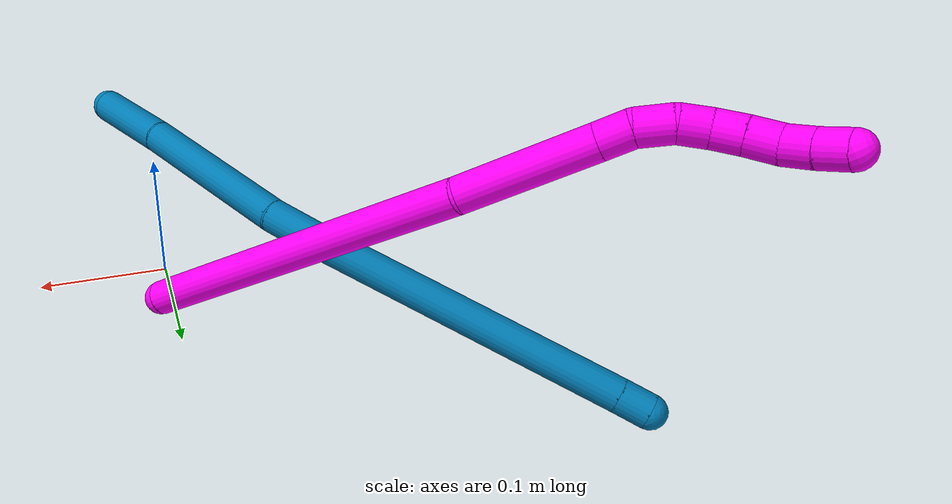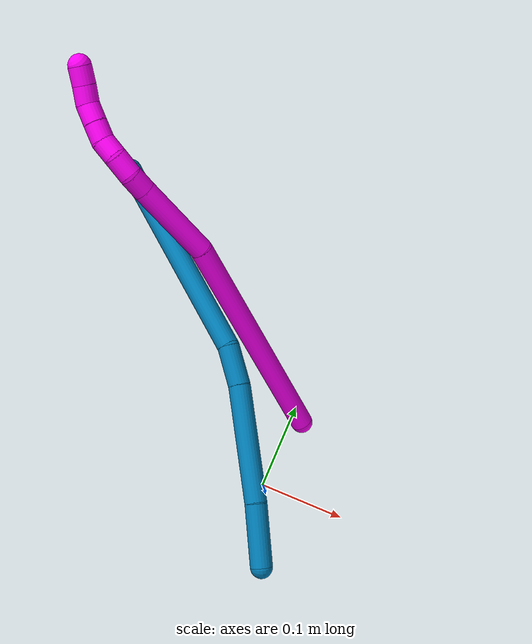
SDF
<sdf version="1.7">
 <world name="default">
  <model name="photoneo_s_sensor">
   <static>1</static>
   <pose>0 0 2 1.57079 1.57079 3.14159</pose>
   <link name="link">
    <inertial><mass>0.1</mass></inertial>
    <sensor name="sensor" type="depth">
     <update_rate>30</update_rate>
     <camera>
      <horizontal_fov>1.22</horizontal_fov>
      <image><width>1920</width><height>1200</height><format>B8G8R8</format></image>
      <clip><near>0.1</near><far>4</far></clip>
      <depth_camera><output>points</output></depth_camera>
     </camera>
     <plugin name="camera_plugin" filename="libgazebo_ros_depth_camera.so">
      <baseline>0.2</baseline>
      <alwaysOn>1</alwaysOn>
      <updateRate>0.0</updateRate>
      <cameraName>camera_ir</cameraName>
      <imageTopicName>/camera/color/image_raw</imageTopicName>
      <cameraInfoTopicName>/camera/color/camera_info</cameraInfoTopicName>
      <depthImageTopicName>/camera/depth/image_raw</depthImageTopicName>
      <depthImageCameraInfoTopicName>/camera/depth/camera_info</depthImageCameraInfoTopicName>
      <pointCloudTopicName>/camera/depth/points</pointCloudTopicName>
      <frameName>fr_optical</frameName>
      <pointCloudCutoff>0.1</pointCloudCutoff>
      <pointCloudCutoffMax>2.0</pointCloudCutoffMax>
      <distortionK1>0</distortionK1>
      <distortionK2>0</distortionK2>
      <distortionK3>0</distortionK3>
      <distortionT1>0</distortionT1>
      <distortionT2>0</distortionT2>
      <CxPrime>0</CxPrime>
      <Cx>0</Cx>
      <Cy>0</Cy>
      <focalLength>0</focalLength>
      <hackBaseline>0</hackBaseline>
     </plugin>
    </sensor>
   </link>
  </model>
  <model name="bin">
   <static>1</static>
   <link name="bottom">
    <collision name="collision-bottom">
     <pose>0 0 -0.01 0 -0 0</pose>
     <geometry><box><size>0.8 0.6 0.02</size></box></geometry>
     <surface>
      <friction><ode><mu>100</mu><mu2>100</mu2></ode></friction>
      <contact><collide_bitmask>65535</collide_bitmask></contact>
     </surface>
    </collision>
   </link>
   <link name="west_wall">
    <collision name="collision-west_wall">
     <pose>-0.41 0 0.1 0 -0 0</pose>
     <geometry><box><size>0.02 0.6 0.2</size></box></geometry>
     <surface>
      <friction><ode><mu>100</mu><mu2>100</mu2></ode></friction>
      <contact><collide_bitmask>65535</collide_bitmask></contact>
     </surface>
    </collision>
   </link>
   <link name="east_wall">
    <collision name="collision-east_wall">
     <pose>0.41 0 0.1 0 -0 0</pose>
     <geometry><box><size>0.02 0.6 0.2</size></box></geometry>
     <surface>
      <friction><ode><mu>100</mu><mu2>100</mu2></ode></friction>
      <contact><collide_bitmask>65535</collide_bitmask></contact>
     </surface>
    </collision>
   </link>
   <link name="south_wall">
    <collision name="collision-south_wall">
     <pose>0 -0.31 0.1 0 -0 0</pose>
     <geometry><box><size>0.8 0.02 0.2</size></box></geometry>
     <surface>
      <friction><ode><mu>100</mu><mu2>100</mu2></ode></friction>
      <contact><collide_bitmask>65535</collide_bitmask></contact>
     </surface>
    </collision>
   </link>
   <link name="north_wall">
    <collision name="collision-north_wall">
     <pose>0 0.31 0.1 0 -0 0</pose>
     <geometry><box><size>0.8 0.02 0.2</size></box></geometry>
     <surface>
      <friction><ode><mu>100</mu><mu2>100</mu2></ode></friction>
      <contact><collide_bitmask>65535</collide_bitmask></contact>
     </surface>
    </collision>
   </link>
  </model>
  <model name="9">
   <static>0</static>
   <link name="9">
    <collision name="collision-cylinder-e_1_1_4">
     <pose>-0.005175 0.017018 0.030314 -0.511558 -0.147772 0.038709</pose>
     <geometry><cylinder><radius>0.0125</radius><length>0.070294</length></cylinder></geometry>
     <surface>
      <friction><ode><mu>1.16</mu><mu2>1.16</mu2><slip1>0</slip1><slip2>0</slip2></ode></friction>
      <contact><ode><kp>1e+06</kp><kd>1</kd><max_vel>0</max_vel><min_depth>0.001</min_depth></ode></contact>
     </surface>
    </collision>
    <visual name="visual-cylinder-e_1_1_4">
     <pose>-0.005175 0.017018 0.030314 -0.511558 -0.147772 0.038709</pose>
     <geometry><cylinder><radius>0.0125</radius><length>0.070294</length></cylinder></geometry>
     <material><ambient>0 0.490196 0.709804 1</ambient></material>
    </visual>
    <collision name="collision-cylinder-e_2_4_5">
     <pose>-0.024631 0.070417 0.113534 -0.60238 -0.218853 0.068231</pose>
     <geometry><cylinder><radius>0.0125</radius><length>0.131554</length></cylinder></geometry>
     <surface>
      <friction><ode><mu>1.16</mu><mu2>1.16</mu2><slip1>0</slip1><slip2>0</slip2></ode></friction>
      <contact><ode><kp>1e+06</kp><kd>1</kd><max_vel>0</max_vel><min_depth>0.001</min_depth></ode></contact>
     </surface>
    </collision>
    <visual name="visual-cylinder-e_2_4_5">
     <pose>-0.024631 0.070417 0.113534 -0.60238 -0.218853 0.068231</pose>
     <geometry><cylinder><radius>0.0125</radius><length>0.131554</length></cylinder></geometry>
     <material><ambient>0 0.490196 0.709804 1</ambient></material>
    </visual>
    <collision name="collision-cylinder-e_3_5_6">
     <pose>-0.046888 0.118894 0.18441 -0.592478 -0.352814 0.10871</pose>
     <geometry><cylinder><radius>0.0125</radius><length>0.046167</length></cylinder></geometry>
     <surface>
      <friction><ode><mu>1.16</mu><mu2>1.16</mu2><slip1>0</slip1><slip2>0</slip2></ode></friction>
      <contact><ode><kp>1e+06</kp><kd>1</kd><max_vel>0</max_vel><min_depth>0.001</min_depth></ode></contact>
     </surface>
    </collision>
    <visual name="visual-cylinder-e_3_5_6">
     <pose>-0.046888 0.118894 0.18441 -0.592478 -0.352814 0.10871</pose>
     <geometry><cylinder><radius>0.0125</radius><length>0.046167</length></cylinder></geometry>
     <material><ambient>0 0.490196 0.709804 1</ambient></material>
    </visual>
    <collision name="collision-cylinder-e_4_6_7">
     <pose>-0.11893 0.194405 0.273059 -0.731276 -0.593532 0.233089</pose>
     <geometry><cylinder><radius>0.0125</radius><length>0.229098</length></cylinder></geometry>
     <surface>
      <friction><ode><mu>1.16</mu><mu2>1.16</mu2><slip1>0</slip1><slip2>0</slip2></ode></friction>
      <contact><ode><kp>1e+06</kp><kd>1</kd><max_vel>0</max_vel><min_depth>0.001</min_depth></ode></contact>
     </surface>
    </collision>
    <visual name="visual-cylinder-e_4_6_7">
     <pose>-0.11893 0.194405 0.273059 -0.731276 -0.593532 0.233089</pose>
     <geometry><cylinder><radius>0.0125</radius><length>0.229098</length></cylinder></geometry>
     <material><ambient>0 0.490196 0.709804 1</ambient></material>
    </visual>
    <collision name="collision-cylinder-e_5_7_2">
     <pose>-0.189213 0.264275 0.350854 -0.736843 -0.574285 0.227023</pose>
     <geometry><cylinder><radius>0.0125</radius><length>0.022887</length></cylinder></geometry>
     <surface>
      <friction><ode><mu>1.16</mu><mu2>1.16</mu2><slip1>0</slip1><slip2>0</slip2></ode></friction>
      <contact><ode><kp>1e+06</kp><kd>1</kd><max_vel>0</max_vel><min_depth>0.001</min_depth></ode></contact>
     </surface>
    </collision>
    <visual name="visual-cylinder-e_5_7_2">
     <pose>-0.189213 0.264275 0.350854 -0.736843 -0.574285 0.227023</pose>
     <geometry><cylinder><radius>0.0125</radius><length>0.022887</length></cylinder></geometry>
     <material><ambient>0 0.490196 0.709804 1</ambient></material>
    </visual>
    <collision name="collision-sphere-2">
     <pose>-0.19543 0.270731 0.357969 0 -0 0</pose>
     <geometry><sphere><radius>0.0125</radius></sphere></geometry>
     <surface>
      <friction><ode><mu>1.16</mu><mu2>1.16</mu2><slip1>0</slip1><slip2>0</slip2></ode></friction>
      <contact><ode><kp>1e+06</kp><kd>1</kd><max_vel>0</max_vel><min_depth>0.001</min_depth></ode></contact>
     </surface>
    </collision>
    <visual name="visual-sphere-2">
     <pose>-0.19543 0.270731 0.357969 0 -0 0</pose>
     <geometry><sphere><radius>0.0125</radius></sphere></geometry>
     <material><ambient>0 0.490196 0.709804 1</ambient></material>
    </visual>
    <collision name="collision-sphere-7">
     <pose>-0.182997 0.257819 0.343738 0 -0 0</pose>
     <geometry><sphere><radius>0.0125</radius></sphere></geometry>
     <surface>
      <friction><ode><mu>1.16</mu><mu2>1.16</mu2><slip1>0</slip1><slip2>0</slip2></ode></friction>
      <contact><ode><kp>1e+06</kp><kd>1</kd><max_vel>0</max_vel><min_depth>0.001</min_depth></ode></contact>
     </surface>
    </collision>
    <visual name="visual-sphere-7">
     <pose>-0.182997 0.257819 0.343738 0 -0 0</pose>
     <geometry><sphere><radius>0.0125</radius></sphere></geometry>
     <material><ambient>0 0.490196 0.709804 1</ambient></material>
    </visual>
    <collision name="collision-sphere-6">
     <pose>-0.054864 0.13099 0.20238 0 -0 0</pose>
     <geometry><sphere><radius>0.0125</radius></sphere></geometry>
     <surface>
      <friction><ode><mu>1.16</mu><mu2>1.16</mu2><slip1>0</slip1><slip2>0</slip2></ode></friction>
      <contact><ode><kp>1e+06</kp><kd>1</kd><max_vel>0</max_vel><min_depth>0.001</min_depth></ode></contact>
     </surface>
    </collision>
    <visual name="visual-sphere-6">
     <pose>-0.054864 0.13099 0.20238 0 -0 0</pose>
     <geometry><sphere><radius>0.0125</radius></sphere></geometry>
     <material><ambient>0 0.490196 0.709804 1</ambient></material>
    </visual>
    <collision name="collision-sphere-5">
     <pose>-0.038911 0.106798 0.166441 0 -0 0</pose>
     <geometry><sphere><radius>0.0125</radius></sphere></geometry>
     <surface>
      <friction><ode><mu>1.16</mu><mu2>1.16</mu2><slip1>0</slip1><slip2>0</slip2></ode></friction>
      <contact><ode><kp>1e+06</kp><kd>1</kd><max_vel>0</max_vel><min_depth>0.001</min_depth></ode></contact>
     </surface>
    </collision>
    <visual name="visual-sphere-5">
     <pose>-0.038911 0.106798 0.166441 0 -0 0</pose>
     <geometry><sphere><radius>0.0125</radius></sphere></geometry>
     <material><ambient>0 0.490196 0.709804 1</ambient></material>
    </visual>
    <collision name="collision-sphere-1">
     <geometry><sphere><radius>0.0125</radius></sphere></geometry>
     <surface>
      <friction><ode><mu>1.16</mu><mu2>1.16</mu2><slip1>0</slip1><slip2>0</slip2></ode></friction>
      <contact><ode><kp>1e+06</kp><kd>1</kd><max_vel>0</max_vel><min_depth>0.001</min_depth></ode></contact>
     </surface>
    </collision>
    <visual name="visual-sphere-1">
     <geometry><sphere><radius>0.0125</radius></sphere></geometry>
     <material><ambient>0 0.490196 0.709804 1</ambient></material>
    </visual>
    <collision name="collision-sphere-4">
     <pose>-0.01035 0.034037 0.060627 0 -0 0</pose>
     <geometry><sphere><radius>0.0125</radius></sphere></geometry>
     <surface>
      <friction><ode><mu>1.16</mu><mu2>1.16</mu2><slip1>0</slip1><slip2>0</slip2></ode></friction>
      <contact><ode><kp>1e+06</kp><kd>1</kd><max_vel>0</max_vel><min_depth>0.001</min_depth></ode></contact>
     </surface>
    </collision>
    <visual name="visual-sphere-4">
     <pose>-0.01035 0.034037 0.060627 0 -0 0</pose>
     <geometry><sphere><radius>0.0125</radius></sphere></geometry>
     <material><ambient>0 0.490196 0.709804 1</ambient></material>
    </visual>
    <inertial>
     <pose>-0.074692 0.13307 0.192335 0 -0 0</pose>
     <mass>0.5</mass>
     <inertia>
      <ixx>0.001241</ixx>
      <ixy>0</ixy>
      <ixz>0</ixz>
      <iyy>0.001249</iyy>
      <iyz>0</iyz>
      <izz>-4.4e-05</izz>
     </inertia>
    </inertial>
   </link>
   <pose>0.025238 -0.074193 0.117994 -1.06961 -0.214356 0.343964</pose>
  </model>
  <model name="10">
   <static>0</static>
   <link name="10">
    <collision name="collision-cylinder-e_1_1_4">
     <pose>0.00239 0.012224 0.12883 -0.094599 0.018469 -0.000874</pose>
     <geometry><cylinder><radius>0.0125</radius><length>0.258861</length></cylinder></geometry>
     <surface>
      <friction><ode><mu>1.16</mu><mu2>1.16</mu2><slip1>0</slip1><slip2>0</slip2></ode></friction>
      <contact><ode><kp>1e+06</kp><kd>1</kd><max_vel>0</max_vel><min_depth>0.001</min_depth></ode></contact>
     </surface>
    </collision>
    <visual name="visual-cylinder-e_1_1_4">
     <pose>0.00239 0.012224 0.12883 -0.094599 0.018469 -0.000874</pose>
     <geometry><cylinder><radius>0.0125</radius><length>0.258861</length></cylinder></geometry>
     <material><ambient>1 0 0.964706 1</ambient></material>
    </visual>
    <collision name="collision-cylinder-e_2_4_5">
     <pose>-0.003786 0.024508 0.30342 -0.001327 -0.185073 0.000123</pose>
     <geometry><cylinder><radius>0.0125</radius><length>0.093111</length></cylinder></geometry>
     <surface>
      <friction><ode><mu>1.16</mu><mu2>1.16</mu2><slip1>0</slip1><slip2>0</slip2></ode></friction>
      <contact><ode><kp>1e+06</kp><kd>1</kd><max_vel>0</max_vel><min_depth>0.001</min_depth></ode></contact>
     </surface>
    </collision>
    <visual name="visual-cylinder-e_2_4_5">
     <pose>-0.003786 0.024508 0.30342 -0.001327 -0.185073 0.000123</pose>
     <geometry><cylinder><radius>0.0125</radius><length>0.093111</length></cylinder></geometry>
     <material><ambient>1 0 0.964706 1</ambient></material>
    </visual>
    <collision name="collision-cylinder-e_3_5_6">
     <pose>-0.013947 0.024603 0.360121 -0.003166 -0.144627 0.000229</pose>
     <geometry><cylinder><radius>0.0125</radius><length>0.022114</length></cylinder></geometry>
     <surface>
      <friction><ode><mu>1.16</mu><mu2>1.16</mu2><slip1>0</slip1><slip2>0</slip2></ode></friction>
      <contact><ode><kp>1e+06</kp><kd>1</kd><max_vel>0</max_vel><min_depth>0.001</min_depth></ode></contact>
     </surface>
    </collision>
    <visual name="visual-cylinder-e_3_5_6">
     <pose>-0.013947 0.024603 0.360121 -0.003166 -0.144627 0.000229</pose>
     <geometry><cylinder><radius>0.0125</radius><length>0.022114</length></cylinder></geometry>
     <material><ambient>1 0 0.964706 1</ambient></material>
    </visual>
    <collision name="collision-cylinder-e_4_6_7">
     <pose>-0.018889 0.027678 0.382395 -0.262052 -0.277992 0.036868</pose>
     <geometry><cylinder><radius>0.0125</radius><length>0.024403</length></cylinder></geometry>
     <surface>
      <friction><ode><mu>1.16</mu><mu2>1.16</mu2><slip1>0</slip1><slip2>0</slip2></ode></friction>
      <contact><ode><kp>1e+06</kp><kd>1</kd><max_vel>0</max_vel><min_depth>0.001</min_depth></ode></contact>
     </surface>
    </collision>
    <visual name="visual-cylinder-e_4_6_7">
     <pose>-0.018889 0.027678 0.382395 -0.262052 -0.277992 0.036868</pose>
     <geometry><cylinder><radius>0.0125</radius><length>0.024403</length></cylinder></geometry>
     <material><ambient>1 0 0.964706 1</ambient></material>
    </visual>
    <collision name="collision-cylinder-e_5_7_8">
     <pose>-0.026512 0.035191 0.401794 -0.506419 -0.433948 0.113962</pose>
     <geometry><cylinder><radius>0.0125</radius><length>0.020331</length></cylinder></geometry>
     <surface>
      <friction><ode><mu>1.16</mu><mu2>1.16</mu2><slip1>0</slip1><slip2>0</slip2></ode></friction>
      <contact><ode><kp>1e+06</kp><kd>1</kd><max_vel>0</max_vel><min_depth>0.001</min_depth></ode></contact>
     </surface>
    </collision>
    <visual name="visual-cylinder-e_5_7_8">
     <pose>-0.026512 0.035191 0.401794 -0.506419 -0.433948 0.113962</pose>
     <geometry><cylinder><radius>0.0125</radius><length>0.020331</length></cylinder></geometry>
     <material><ambient>1 0 0.964706 1</ambient></material>
    </visual>
    <collision name="collision-cylinder-e_6_8_9">
     <pose>-0.03244 0.045356 0.418065 -0.606408 -0.164149 0.051458</pose>
     <geometry><cylinder><radius>0.0125</radius><length>0.020243</length></cylinder></geometry>
     <surface>
      <friction><ode><mu>1.16</mu><mu2>1.16</mu2><slip1>0</slip1><slip2>0</slip2></ode></friction>
      <contact><ode><kp>1e+06</kp><kd>1</kd><max_vel>0</max_vel><min_depth>0.001</min_depth></ode></contact>
     </surface>
    </collision>
    <visual name="visual-cylinder-e_6_8_9">
     <pose>-0.03244 0.045356 0.418065 -0.606408 -0.164149 0.051458</pose>
     <geometry><cylinder><radius>0.0125</radius><length>0.020243</length></cylinder></geometry>
     <material><ambient>1 0 0.964706 1</ambient></material>
    </visual>
    <collision name="collision-cylinder-e_7_9_10">
     <pose>-0.03595 0.057246 0.434444 -0.648814 -0.178965 0.060326</pose>
     <geometry><cylinder><radius>0.0125</radius><length>0.020852</length></cylinder></geometry>
     <surface>
      <friction><ode><mu>1.16</mu><mu2>1.16</mu2><slip1>0</slip1><slip2>0</slip2></ode></friction>
      <contact><ode><kp>1e+06</kp><kd>1</kd><max_vel>0</max_vel><min_depth>0.001</min_depth></ode></contact>
     </surface>
    </collision>
    <visual name="visual-cylinder-e_7_9_10">
     <pose>-0.03595 0.057246 0.434444 -0.648814 -0.178965 0.060326</pose>
     <geometry><cylinder><radius>0.0125</radius><length>0.020852</length></cylinder></geometry>
     <material><ambient>1 0 0.964706 1</ambient></material>
    </visual>
    <collision name="collision-cylinder-e_8_10_11">
     <pose>-0.036384 0.068568 0.451104 -0.543169 0.142474 -0.039736</pose>
     <geometry><cylinder><radius>0.0125</radius><length>0.020026</length></cylinder></geometry>
     <surface>
      <friction><ode><mu>1.16</mu><mu2>1.16</mu2><slip1>0</slip1><slip2>0</slip2></ode></friction>
      <contact><ode><kp>1e+06</kp><kd>1</kd><max_vel>0</max_vel><min_depth>0.001</min_depth></ode></contact>
     </surface>
    </collision>
    <visual name="visual-cylinder-e_8_10_11">
     <pose>-0.036384 0.068568 0.451104 -0.543169 0.142474 -0.039736</pose>
     <geometry><cylinder><radius>0.0125</radius><length>0.020026</length></cylinder></geometry>
     <material><ambient>1 0 0.964706 1</ambient></material>
    </visual>
    <collision name="collision-cylinder-e_9_11_2">
     <pose>-0.033636 0.078218 0.46844 -0.472774 0.132619 -0.031991</pose>
     <geometry><cylinder><radius>0.0125</radius><length>0.020059</length></cylinder></geometry>
     <surface>
      <friction><ode><mu>1.16</mu><mu2>1.16</mu2><slip1>0</slip1><slip2>0</slip2></ode></friction>
      <contact><ode><kp>1e+06</kp><kd>1</kd><max_vel>0</max_vel><min_depth>0.001</min_depth></ode></contact>
     </surface>
    </collision>
    <visual name="visual-cylinder-e_9_11_2">
     <pose>-0.033636 0.078218 0.46844 -0.472774 0.132619 -0.031991</pose>
     <geometry><cylinder><radius>0.0125</radius><length>0.020059</length></cylinder></geometry>
     <material><ambient>1 0 0.964706 1</ambient></material>
    </visual>
    <collision name="collision-sphere-2">
     <pose>-0.03231 0.082745 0.477291 0 -0 0</pose>
     <geometry><sphere><radius>0.0125</radius></sphere></geometry>
     <surface>
      <friction><ode><mu>1.16</mu><mu2>1.16</mu2><slip1>0</slip1><slip2>0</slip2></ode></friction>
      <contact><ode><kp>1e+06</kp><kd>1</kd><max_vel>0</max_vel><min_depth>0.001</min_depth></ode></contact>
     </surface>
    </collision>
    <visual name="visual-sphere-2">
     <pose>-0.03231 0.082745 0.477291 0 -0 0</pose>
     <geometry><sphere><radius>0.0125</radius></sphere></geometry>
     <material><ambient>1 0 0.964706 1</ambient></material>
    </visual>
    <collision name="collision-sphere-11">
     <pose>-0.034962 0.073691 0.459589 0 -0 0</pose>
     <geometry><sphere><radius>0.0125</radius></sphere></geometry>
     <surface>
      <friction><ode><mu>1.16</mu><mu2>1.16</mu2><slip1>0</slip1><slip2>0</slip2></ode></friction>
      <contact><ode><kp>1e+06</kp><kd>1</kd><max_vel>0</max_vel><min_depth>0.001</min_depth></ode></contact>
     </surface>
    </collision>
    <visual name="visual-sphere-11">
     <pose>-0.034962 0.073691 0.459589 0 -0 0</pose>
     <geometry><sphere><radius>0.0125</radius></sphere></geometry>
     <material><ambient>1 0 0.964706 1</ambient></material>
    </visual>
    <collision name="collision-sphere-10">
     <pose>-0.037806 0.063445 0.442619 0 -0 0</pose>
     <geometry><sphere><radius>0.0125</radius></sphere></geometry>
     <surface>
      <friction><ode><mu>1.16</mu><mu2>1.16</mu2><slip1>0</slip1><slip2>0</slip2></ode></friction>
      <contact><ode><kp>1e+06</kp><kd>1</kd><max_vel>0</max_vel><min_depth>0.001</min_depth></ode></contact>
     </surface>
    </collision>
    <visual name="visual-sphere-10">
     <pose>-0.037806 0.063445 0.442619 0 -0 0</pose>
     <geometry><sphere><radius>0.0125</radius></sphere></geometry>
     <material><ambient>1 0 0.964706 1</ambient></material>
    </visual>
    <collision name="collision-sphere-9">
     <pose>-0.034094 0.051047 0.42627 0 -0 0</pose>
     <geometry><sphere><radius>0.0125</radius></sphere></geometry>
     <surface>
      <friction><ode><mu>1.16</mu><mu2>1.16</mu2><slip1>0</slip1><slip2>0</slip2></ode></friction>
      <contact><ode><kp>1e+06</kp><kd>1</kd><max_vel>0</max_vel><min_depth>0.001</min_depth></ode></contact>
     </surface>
    </collision>
    <visual name="visual-sphere-9">
     <pose>-0.034094 0.051047 0.42627 0 -0 0</pose>
     <geometry><sphere><radius>0.0125</radius></sphere></geometry>
     <material><ambient>1 0 0.964706 1</ambient></material>
    </visual>
    <collision name="collision-sphere-4">
     <pose>0.004781 0.024447 0.257659 0 -0 0</pose>
     <geometry><sphere><radius>0.0125</radius></sphere></geometry>
     <surface>
      <friction><ode><mu>1.16</mu><mu2>1.16</mu2><slip1>0</slip1><slip2>0</slip2></ode></friction>
      <contact><ode><kp>1e+06</kp><kd>1</kd><max_vel>0</max_vel><min_depth>0.001</min_depth></ode></contact>
     </surface>
    </collision>
    <visual name="visual-sphere-4">
     <pose>0.004781 0.024447 0.257659 0 -0 0</pose>
     <geometry><sphere><radius>0.0125</radius></sphere></geometry>
     <material><ambient>1 0 0.964706 1</ambient></material>
    </visual>
    <collision name="collision-sphere-1">
     <geometry><sphere><radius>0.0125</radius></sphere></geometry>
     <surface>
      <friction><ode><mu>1.16</mu><mu2>1.16</mu2><slip1>0</slip1><slip2>0</slip2></ode></friction>
      <contact><ode><kp>1e+06</kp><kd>1</kd><max_vel>0</max_vel><min_depth>0.001</min_depth></ode></contact>
     </surface>
    </collision>
    <visual name="visual-sphere-1">
     <geometry><sphere><radius>0.0125</radius></sphere></geometry>
     <material><ambient>1 0 0.964706 1</ambient></material>
    </visual>
    <collision name="collision-sphere-8">
     <pose>-0.030786 0.039665 0.409859 0 -0 0</pose>
     <geometry><sphere><radius>0.0125</radius></sphere></geometry>
     <surface>
      <friction><ode><mu>1.16</mu><mu2>1.16</mu2><slip1>0</slip1><slip2>0</slip2></ode></friction>
      <contact><ode><kp>1e+06</kp><kd>1</kd><max_vel>0</max_vel><min_depth>0.001</min_depth></ode></contact>
     </surface>
    </collision>
    <visual name="visual-sphere-8">
     <pose>-0.030786 0.039665 0.409859 0 -0 0</pose>
     <geometry><sphere><radius>0.0125</radius></sphere></geometry>
     <material><ambient>1 0 0.964706 1</ambient></material>
    </visual>
    <collision name="collision-sphere-5">
     <pose>-0.012353 0.024569 0.34918 0 -0 0</pose>
     <geometry><sphere><radius>0.0125</radius></sphere></geometry>
     <surface>
      <friction><ode><mu>1.16</mu><mu2>1.16</mu2><slip1>0</slip1><slip2>0</slip2></ode></friction>
      <contact><ode><kp>1e+06</kp><kd>1</kd><max_vel>0</max_vel><min_depth>0.001</min_depth></ode></contact>
     </surface>
    </collision>
    <visual name="visual-sphere-5">
     <pose>-0.012353 0.024569 0.34918 0 -0 0</pose>
     <geometry><sphere><radius>0.0125</radius></sphere></geometry>
     <material><ambient>1 0 0.964706 1</ambient></material>
    </visual>
    <collision name="collision-sphere-6">
     <pose>-0.015541 0.024638 0.371063 0 -0 0</pose>
     <geometry><sphere><radius>0.0125</radius></sphere></geometry>
     <surface>
      <friction><ode><mu>1.16</mu><mu2>1.16</mu2><slip1>0</slip1><slip2>0</slip2></ode></friction>
      <contact><ode><kp>1e+06</kp><kd>1</kd><max_vel>0</max_vel><min_depth>0.001</min_depth></ode></contact>
     </surface>
    </collision>
    <visual name="visual-sphere-6">
     <pose>-0.015541 0.024638 0.371063 0 -0 0</pose>
     <geometry><sphere><radius>0.0125</radius></sphere></geometry>
     <material><ambient>1 0 0.964706 1</ambient></material>
    </visual>
    <collision name="collision-sphere-7">
     <pose>-0.022237 0.030717 0.393728 0 -0 0</pose>
     <geometry><sphere><radius>0.0125</radius></sphere></geometry>
     <surface>
      <friction><ode><mu>1.16</mu><mu2>1.16</mu2><slip1>0</slip1><slip2>0</slip2></ode></friction>
      <contact><ode><kp>1e+06</kp><kd>1</kd><max_vel>0</max_vel><min_depth>0.001</min_depth></ode></contact>
     </surface>
    </collision>
    <visual name="visual-sphere-7">
     <pose>-0.022237 0.030717 0.393728 0 -0 0</pose>
     <geometry><sphere><radius>0.0125</radius></sphere></geometry>
     <material><ambient>1 0 0.964706 1</ambient></material>
    </visual>
    <inertial>
     <pose>-0.007704 0.02487 0.246034 0 -0 0</pose>
     <mass>0.5</mass>
     <inertia>
      <ixx>0.001533</ixx>
      <ixy>0</ixy>
      <ixz>0</ixz>
      <iyy>0.001536</iyy>
      <iyz>0</iyz>
      <izz>-0.000117</izz>
     </inertia>
    </inertial>
   </link>
   <pose>0.010707 0.087686 0.032222 -0.857564 -0.546636 0.606343</pose>
  </model>
 </world>
</sdf>
